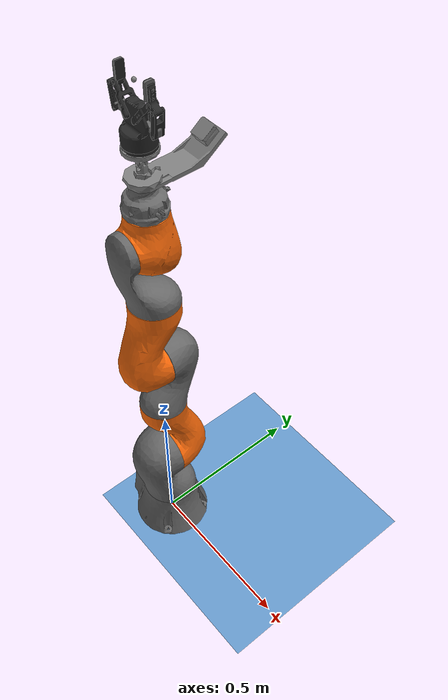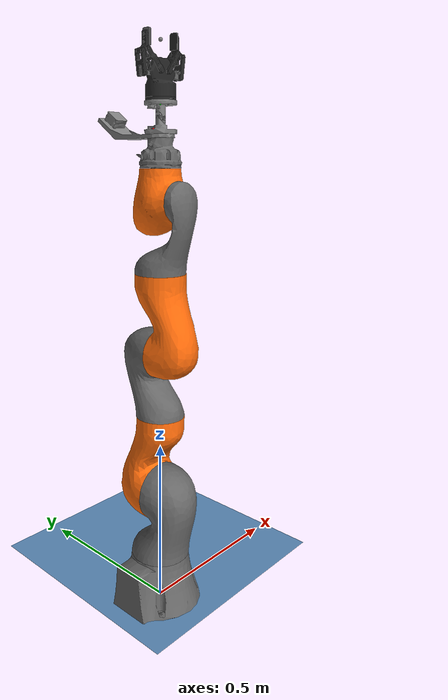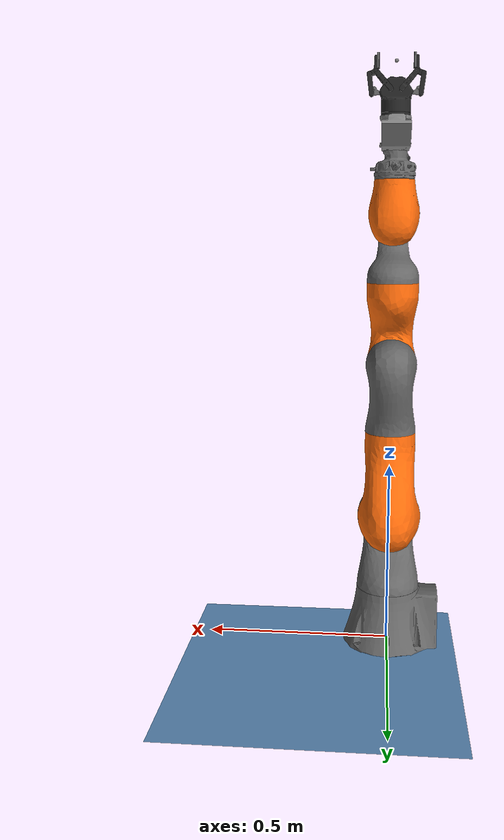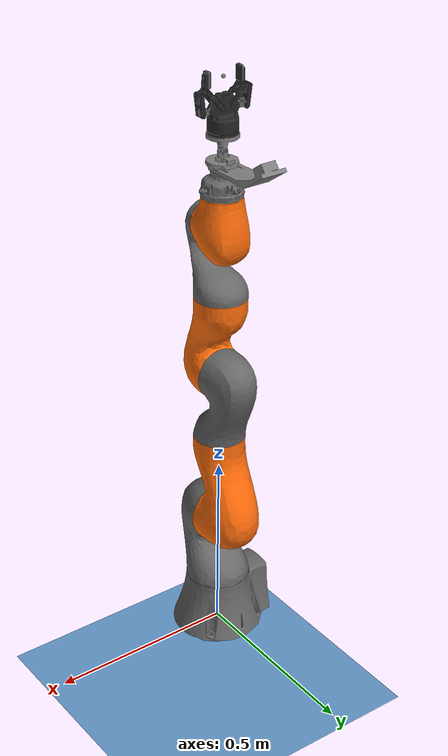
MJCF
<mujoco model="unnamed_model">
  <compiler autolimits="true" angle="radian"/>
  <option timestep="0.001" gravity="0 0 -9.8100000000000005" integrator="implicitfast"/>
  <statistic meansize="0.029999999999999999" extent="0.29999999999999999" center="0.29999999999999999 0 0"/>
  <default>
    <default class="/"/>
    <default class="lab/"/>
    <default class="lab/iiwa/"/>
    <default class="lab/iiwa/cardan_joint/">
      <default class="lab/iiwa/cardan_joint/visual">
        <geom type="mesh" contype="0" conaffinity="0" group="2"/>
      </default>
      <default class="lab/iiwa/cardan_joint/collision">
        <geom type="mesh" group="3"/>
      </default>
    </default>
    <default class="lab/iiwa/cardan_joint/ur_gripper/2f85">
      <mesh scale="0.001 0.001 0.001"/>
      <joint axis="1 0 0"/>
      <general biastype="affine"/>
      <default class="lab/iiwa/cardan_joint/ur_gripper/visual2">
        <geom type="mesh" contype="0" conaffinity="0" group="2" material="lab/iiwa/cardan_joint/ur_gripper/gray2"/>
      </default>
      <default class="lab/iiwa/cardan_joint/ur_gripper/driver">
        <joint solreflimit="0.0050000000000000001 1" solimplimit="0.94999999999999996 0.98999999999999999 0.001" range="0 0.80000000000000004" armature="0.0050000000000000001" damping="0.10000000000000001"/>
      </default>
      <default class="lab/iiwa/cardan_joint/ur_gripper/follower">
        <joint pos="0 -0.017999999999999999 0.0064999999999999997" solreflimit="0.0050000000000000001 1" solimplimit="0.94999999999999996 0.98999999999999999 0.001" range="-0.872664 0.872664"/>
      </default>
      <default class="lab/iiwa/cardan_joint/ur_gripper/spring_link">
        <joint stiffness="0.050000000000000003" range="-0.29670597283 0.80000000000000004" springref="2.6200000000000001" damping="0.00125"/>
      </default>
      <default class="lab/iiwa/cardan_joint/ur_gripper/coupler">
        <joint solreflimit="0.0050000000000000001 1" solimplimit="0.94999999999999996 0.98999999999999999 0.001" range="-1.5700000000000001 0"/>
      </default>
      <default class="lab/iiwa/cardan_joint/ur_gripper/collision2">
        <geom type="box" condim="3" group="3" rgba="1 0.42352899999999999 0.039215699999999999 1"/>
        <default class="lab/iiwa/cardan_joint/ur_gripper/pad_box1">
          <geom type="box" priority="1" size="0.010999999999999999 0.0040000000000000001 0.0093749999999999997" rgba="0.55000000000000004 0.55000000000000004 0.55000000000000004 1" friction="0.69999999999999996" mass="0" solref="0.0040000000000000001 1" solimp="0.94999999999999996 0.98999999999999999 0.001" pos="0 -0.0025999999999999999 0.028125000000000001"/>
        </default>
        <default class="lab/iiwa/cardan_joint/ur_gripper/pad_box2">
          <geom type="box" priority="1" size="0.010999999999999999 0.0040000000000000001 0.0093749999999999997" rgba="0.45000000000000001 0.45000000000000001 0.45000000000000001 1" friction="0.59999999999999998" mass="0" solref="0.0040000000000000001 1" solimp="0.94999999999999996 0.98999999999999999 0.001" pos="0 -0.0025999999999999999 0.0093749999999999997"/>
        </default>
      </default>
    </default>
    <default class="wall/"/>
    <default class="block_green/"/>
    <default class="block_orange/"/>
    <default class="block_blue/"/>
  </default>
  <asset>
    <texture name="lab//unnamed_texture_0" type="skybox" builtin="gradient" rgb1="0.59999999999999998 0.80000000000000004 1" rgb2="0.20000000000000001 0.20000000000000001 0.20000000000000001" width="512" height="3072"/>
    <texture name="lab/groundplane" type="2d" builtin="checker" rgb1="0.5 0.69999999999999996 0.90000000000000002" rgb2="0.29999999999999999 0.5 0.69999999999999996" mark="edge" markrgb="0.90000000000000002 0.90000000000000002 0.90000000000000002" width="300" height="300"/>
    <material name="lab/groundplane" class="lab/" texture="lab/groundplane" texrepeat="5 5" texuniform="true" reflectance="0.40000000000000002"/>
    <mesh name="lab/iiwa/link_0" class="lab/iiwa/" file="base_link-5923539fbd7857ea716ff1bc3ef3f05fb44fefdd.stl"/>
    <mesh name="lab/iiwa/link_1" class="lab/iiwa/" file="link_1-ac6245160be1a43d652c2a2c3b73a58d1dfa90e4.stl"/>
    <mesh name="lab/iiwa/link_2" class="lab/iiwa/" file="link_2-825b1e76e8e7c70ae4c8d112f62701a01555dcf5.stl"/>
    <mesh name="lab/iiwa/link_3" class="lab/iiwa/" file="link_3-b55302ba767376e20501905d1e5ea3ae6b70998d.stl"/>
    <mesh name="lab/iiwa/link_4" class="lab/iiwa/" file="link_4-05ccd5ecc00b0d36b59bc264f7cec382d4c4122b.stl"/>
    <mesh name="lab/iiwa/link_5" class="lab/iiwa/" file="link_5-fcf25b48909184c134560cfa93731b85bf4698c9.stl"/>
    <mesh name="lab/iiwa/link_6" class="lab/iiwa/" file="link_6-955785181a16fa937663f7db1c496e9605b820a9.stl"/>
    <mesh name="lab/iiwa/link_7" class="lab/iiwa/" file="link_7-85a5c154edcbf21b01a9031cc0a7c9861a4e0fed.stl"/>
    <mesh name="lab/iiwa/cardan_joint/cj_cam_mount" class="lab/iiwa/cardan_joint/" file="cj_top_V4_coll-6f3e36287b54bdd5ad2518d59e4cc865785780c3.obj"/>
    <mesh name="lab/iiwa/cardan_joint/cj_middle" class="lab/iiwa/cardan_joint/" file="cj_middle-1309231b4c0a493c2b65609bbb64275813619889.obj"/>
    <mesh name="lab/iiwa/cardan_joint/cj_bot" class="lab/iiwa/cardan_joint/" file="cj_asm_half-947726d4ba6162bd80d70f31db90d4ae33ecd56c.obj"/>
    <mesh name="lab/iiwa/cardan_joint/cj_cam_mount_vis" class="lab/iiwa/cardan_joint/" file="cj_top_V4-76978c996657efe89708b43b67fb00f5f31b4bc6.obj"/>
    <mesh name="lab/iiwa/cardan_joint/cj_middle_vis" class="lab/iiwa/cardan_joint/" file="cj_middle_vis-e08f93e997c48b5995634064a579731fca49cfe9.obj"/>
    <mesh name="lab/iiwa/cardan_joint/cj_bot_vis" class="lab/iiwa/cardan_joint/" file="cj_asm_half_vis-10e9d2e22a7610ed98d9ae3b58b68799d0da53a0.obj"/>
    <material name="lab/iiwa/cardan_joint/ur_gripper/black2" class="lab/iiwa/cardan_joint/ur_gripper/2f85" rgba="0.14899999999999999 0.14899999999999999 0.14899999999999999 1"/>
    <material name="lab/iiwa/cardan_joint/ur_gripper/wood2" class="lab/iiwa/cardan_joint/ur_gripper/2f85" rgba="0.56000000000000005 0.37 0.28999999999999998 1"/>
    <material name="lab/iiwa/cardan_joint/ur_gripper/gray2" class="lab/iiwa/cardan_joint/ur_gripper/2f85" rgba="0.40000000000000002 0.40000000000000002 0.40000000000000002 1"/>
    <mesh name="lab/iiwa/cardan_joint/ur_gripper/base_mount" class="lab/iiwa/cardan_joint/ur_gripper/2f85" file="base_mount-22e57178defe77afb6bdd333bfae16607f1eb3dd.stl"/>
    <mesh name="lab/iiwa/cardan_joint/ur_gripper/base" class="lab/iiwa/cardan_joint/ur_gripper/2f85" file="base-e5dacbcc3971bfdb549ff8c7d38ea873ca7f2933.stl"/>
    <mesh name="lab/iiwa/cardan_joint/ur_gripper/driver" class="lab/iiwa/cardan_joint/ur_gripper/2f85" file="driver-97efa43184c575b31ff1f3980641896f51492762.stl"/>
    <mesh name="lab/iiwa/cardan_joint/ur_gripper/coupler" class="lab/iiwa/cardan_joint/ur_gripper/2f85" file="coupler-0a4240dc94992944cca6ec9e270ff1658fa86c55.stl"/>
    <mesh name="lab/iiwa/cardan_joint/ur_gripper/follower" class="lab/iiwa/cardan_joint/ur_gripper/2f85" file="follower-39e4b8048f1395ee38cb45b37b5fec0e6f2aaec9.stl"/>
    <mesh name="lab/iiwa/cardan_joint/ur_gripper/pad" class="lab/iiwa/cardan_joint/ur_gripper/2f85" file="pad-e6a633b2c81740b1f783ec4c6e695c8cc570f09d.stl"/>
    <mesh name="lab/iiwa/cardan_joint/ur_gripper/silicone_pad" class="lab/iiwa/cardan_joint/ur_gripper/2f85" file="silicone_pad-c284384f3ca6dcdc24d6188a5d1a2d4c42c412ac.stl"/>
    <mesh name="lab/iiwa/cardan_joint/ur_gripper/spring_link" class="lab/iiwa/cardan_joint/ur_gripper/2f85" file="spring_link-8f50234325193b84e9f86b7a63a24560a389c9bf.stl"/>
    <material name="wall/wood" class="wall/" specular="0.10000000000000001" shininess="0.20000000000000001" reflectance="0.050000000000000003" rgba="0.55000000000000004 0.27000000000000002 0.070000000000000007 1"/>
    <material name="wall/aluminum" class="wall/" specular="0.80000000000000004" shininess="0.90000000000000002" reflectance="0.59999999999999998" rgba="0.80000000000000004 0.80000000000000004 0.80000000000000004 1"/>
  </asset>
  <worldbody>
    <body name="ground" mocap="false" pos="0 0 0">
      <site name="ground_site_attach" class="/"/>
      <body name="lab/">
        <light name="lab//unnamed_light_0" class="lab/" directional="true" pos="0 0 1.5" dir="0 0 -1"/>
        <geom name="lab/floor" class="lab/" type="plane" size="0 0 0.050000000000000003" material="lab/groundplane"/>
        <site name="lab/ground_attach" class="lab/" group="0" rgba="1 0 0 1" size="0.01" pos="0 0 0"/>
        <body pos="0 0 0" name="lab/iiwa/">
          <body name="lab/iiwa/base" pos="0 0 0">
            <camera name="lab/iiwa/robotview" class="lab/iiwa/" mode="fixed" pos="1 0 0.40000000000000002" quat="0.65300000000000002 0.27100000000000002 0.27100000000000002 0.65300000000000002"/>
            <inertial pos="0 0 0" mass="0" diaginertia="0 0 0"/>
            <geom name="lab/iiwa//unnamed_geom_0" class="lab/iiwa/" type="mesh" contype="0" conaffinity="0" group="1" rgba="0.40000000000000002 0.40000000000000002 0.40000000000000002 1" density="0" mesh="lab/iiwa/link_0"/>
            <geom name="lab/iiwa/col_sockel" class="lab/iiwa/" type="sphere" contype="0" conaffinity="0" group="3" size="0.12" rgba="1 0 0 1" density="0" pos="-0.01 0 0.10000000000000001"/>
            <body name="lab/iiwa/iiwa_link_1" pos="0 0 0.1575">
              <inertial pos="0 -0.01439 0.102503" quat="1 0 0 0" mass="6.4950000000000001" diaginertia="0.0690761441316632 0.071108558691451398 0.020062585440211899"/>
              <joint name="lab/iiwa/joint_1" class="lab/iiwa/" pos="0 0 0" axis="0 0 1" limited="true" range="-2.9670597283903604 2.9670597283903604"/>
              <geom name="lab/iiwa//unnamed_geom_2" class="lab/iiwa/" type="mesh" contype="0" conaffinity="0" group="1" rgba="0.40000000000000002 0.40000000000000002 0.40000000000000002 1" density="0" pos="0 0 -0.0050000000000000001" mesh="lab/iiwa/link_1"/>
              <geom name="lab/iiwa/col_joint1" class="lab/iiwa/" type="capsule" contype="1" conaffinity="1" group="3" size="0.074999999999999997" rgba="0.40000000000000002 0.40000000000000002 0.40000000000000002 1" density="0" fromto="0 0 0 0 -0.050000000000000003 0.20250000000000001" quat="0 0 0 1"/>
              <body name="lab/iiwa/iiwa_link_2" pos="0 0 0.20250000000000001" quat="0 0 0.70710700000000004 0.70710700000000004">
                <inertial pos="1.2e-05 0.06472 0.0048040000000000001" quat="1 0 0 0" mass="8.8070000000000004" diaginertia="0.082470168353469195 0.016411096805519099 0.087351089266136106"/>
                <joint name="lab/iiwa/joint_2" class="lab/iiwa/" pos="0 0 0" axis="0 0 1" limited="true" range="-2.0943951023931953 2.0943951023931953"/>
                <geom name="lab/iiwa//unnamed_geom_4" class="lab/iiwa/" type="mesh" contype="0" conaffinity="0" group="1" rgba="1 0.42352899999999999 0.039215699999999999 1" density="0" pos="0 0 -0.012999999999999999" quat="0 0 0 1" mesh="lab/iiwa/link_2"/>
                <geom name="lab/iiwa/col_joint2" class="lab/iiwa/" type="capsule" contype="1" conaffinity="1" group="3" size="0.074999999999999997" rgba="1 0.42352899999999999 0.039215699999999999 1" density="0" fromto="0 0 0.051299999999999998 0 0.23749999999999999 0" quat="0 0 0 1"/>
                <body name="lab/iiwa/iiwa_link_3" pos="0 0.23749999999999999 0" quat="0 0 0.70710700000000004 0.70710700000000004">
                  <inertial pos="-0.00020799999999999999 0.01601 0.087282999999999999" quat="1 0 0 0" mass="2.7999999999999998" diaginertia="0.023015294131881699 0.022866155414347399 0.0454482283748983"/>
                  <joint name="lab/iiwa/joint_3" class="lab/iiwa/" pos="0 0 0" axis="0 0 1" limited="true" range="-2.9670597283903604 2.9670597283903604"/>
                  <geom name="lab/iiwa//unnamed_geom_6" class="lab/iiwa/" type="mesh" contype="0" conaffinity="0" group="1" rgba="0.40000000000000002 0.40000000000000002 0.40000000000000002 1" density="0" pos="0 0 -0.0050000000000000001" mesh="lab/iiwa/link_3"/>
                  <geom name="lab/iiwa/col_joint3" class="lab/iiwa/" type="capsule" contype="1" conaffinity="1" group="3" size="0.070000000000000007" rgba="0.40000000000000002 0.40000000000000002 0.40000000000000002 1" density="0" fromto="0 0 0 0 0.050000000000000003 0.1825" quat="0 0 0 1"/>
                  <body name="lab/iiwa/iiwa_link_4" pos="0 0 0.1825" quat="0.70710700000000004 0.70710700000000004 0 0">
                    <inertial pos="-0.000203 0.098639000000000004 0.011478" quat="1 0 0 0" mass="5.2830000000000004" diaginertia="0.047278966834196801 0.0096472680414690908 0.046652900776167898"/>
                    <joint name="lab/iiwa/joint_4" class="lab/iiwa/" pos="0 0 0" axis="0 0 1" limited="true" range="-2.0943951023931953 2.0943951023931953"/>
                    <geom name="lab/iiwa//unnamed_geom_8" class="lab/iiwa/" type="mesh" contype="0" conaffinity="0" group="1" rgba="1 0.42352899999999999 0.039215699999999999 1" density="0" pos="0 0 -0.010999999999999999" mesh="lab/iiwa/link_4"/>
                    <geom name="lab/iiwa/col_joint4" class="lab/iiwa/" type="capsule" contype="1" conaffinity="1" group="3" size="0.070000000000000007" rgba="1 0.42352899999999999 0.039215699999999999 1" density="0" fromto="0 0 0.040000000000000001 0 0.2175 0" quat="0 0 0 1"/>
                    <body name="lab/iiwa/iiwa_link_5" pos="0 0.2175 0" quat="0 0 0.70710700000000004 0.70710700000000004">
                      <inertial pos="5.7000000000000003e-05 0.014468 0.062937999999999994" mass="1.889" diaginertia="0.0138359953358589 0.011685933775196901 0.00571863785412578"/>
                      <joint name="lab/iiwa/joint_5" class="lab/iiwa/" pos="0 0 0" axis="0 0 1" limited="true" range="-2.9670597283903604 2.9670597283903604"/>
                      <geom name="lab/iiwa//unnamed_geom_10" class="lab/iiwa/" type="mesh" contype="0" conaffinity="0" group="1" rgba="0.40000000000000002 0.40000000000000002 0.40000000000000002 1" density="0" pos="0 0 -0.0050000000000000001" quat="0 0 0 1" mesh="lab/iiwa/link_5"/>
                      <geom name="lab/iiwa/col_joint5" class="lab/iiwa/" type="capsule" contype="1" conaffinity="1" group="3" size="0.070000000000000007" rgba="0.40000000000000002 0.40000000000000002 0.40000000000000002 1" density="0" fromto="0 0 0 0 0.029999999999999999 0.1825" quat="0 0 0 1"/>
                      <body name="lab/iiwa/iiwa_link_6" pos="0 0 0.1825" quat="0.70710700000000004 0.70710700000000004 0 0">
                        <inertial pos="0.00036299999999999999 0.016982000000000001 -0.019730999999999999" quat="1 0 0 0" mass="2.3199999999999998" diaginertia="0.0073275878721676497 0.0047763375578371101 0.0060679763855029604"/>
                        <joint name="lab/iiwa/joint_6" class="lab/iiwa/" pos="0 0 0" axis="0 0 1" limited="true" range="-2.0943951023931953 2.0943951023931953"/>
                        <geom name="lab/iiwa//unnamed_geom_12" class="lab/iiwa/" type="mesh" contype="0" conaffinity="0" group="1" rgba="1 0.42352899999999999 0.039215699999999999 1" density="0" pos="0 0 -0.060999999999999999" quat="0 0 0 1" mesh="lab/iiwa/link_6"/>
                        <geom name="lab/iiwa/col_joint67" class="lab/iiwa/" type="capsule" contype="1" conaffinity="1" group="3" size="0.059999999999999998" rgba="1 0.42352899999999999 0.039215699999999999 1" density="0" fromto="0 0 0 0 0.081000000000000003 0" quat="0 0 0 1"/>
                        <body name="lab/iiwa/iiwa_link_7" pos="0 0.081000000000000003 0" quat="0 0 0.70710700000000004 0.70710700000000004">
                          <inertial pos="0.0019040000000000001 -9.2999999999999997e-05 0.018862" quat="1 0 0 0" mass="0.86299999999999999" diaginertia="0.00088400000000000002 0.00088800000000000001 0.0011050000000000001"/>
                          <joint name="lab/iiwa/joint_7" class="lab/iiwa/" pos="0 0 0" axis="0 0 1" limited="true" range="-3.0543261909900767 3.0543261909900767"/>
                          <geom name="lab/iiwa//unnamed_geom_14" class="lab/iiwa/" type="mesh" contype="0" conaffinity="0" group="1" rgba="0.40000000000000002 0.40000000000000002 0.40000000000000002 1" density="0" mesh="lab/iiwa/link_7"/>
                          <site name="lab/iiwa/gripper_attachment" class="lab/iiwa/" group="0" rgba="1 0 0 1" size="0.01" pos="0 0 0.070999999999999994"/>
                          <body pos="0 0 0.070999999999999994" name="lab/iiwa/cardan_joint/">
                            <body name="lab/iiwa/cardan_joint/cj_top" pos="0 0 0" quat="0.5 0.5 -0.5 -0.5">
                              <inertial pos="0.0135 -0 0.022380000000000001" quat="1 0 0 0" mass="0.5" diaginertia="0.00012400000000000001 0.00037800000000000003 0.00042499999999999998"/>
                              <geom name="lab/iiwa/cardan_joint//unnamed_geom_0" class="lab/iiwa/cardan_joint/visual" contype="0" conaffinity="0" group="2" quat="0.70709999999999995 0 0 0.70709999999999995" mesh="lab/iiwa/cardan_joint/cj_cam_mount_vis"/>
                              <geom name="lab/iiwa/cardan_joint//unnamed_geom_1" class="lab/iiwa/cardan_joint/collision" contype="0" quat="0.70709999999999995 0 0 0.70709999999999995" mesh="lab/iiwa/cardan_joint/cj_cam_mount"/>
                              <site name="lab/iiwa/cardan_joint/imu1_site" class="lab/iiwa/cardan_joint/" type="sphere" rgba="1 0 0 1" size="0.0040000000000000001" pos="-0.0138 0.02 0.01" quat="0.5 0.5 -0.5 0.5"/>
                              <camera name="lab/iiwa/cardan_joint/eye_in_hand" class="lab/iiwa/cardan_joint/" mode="fixed" fovy="75" pos="-0.17000000000000001 0.040000000000000001 0" quat="0.62721139999999997 0.62721139999999997 0.32650560000000001 0.32650560000000001"/>
                              <site name="lab/iiwa/cardan_joint/camera_site" class="lab/iiwa/cardan_joint/" type="sphere" rgba="1 0 0 1" size="0.0040000000000000001" pos="-0.17000000000000001 0.040000000000000001 0" quat="0.62721139999999997 0.62721139999999997 0.32650560000000001 0.32650560000000001"/>
                              <body name="lab/iiwa/cardan_joint/cj_middle" pos="0 0.048000000000000001 0" quat="0.70709999999999995 -0.70709999999999995 0 0">
                                <inertial pos="0 0 0" quat="1 0 0 0" mass="0.016" diaginertia="9.9999999999999995e-07 9.9999999999999995e-07 9.9999999999999995e-07"/>
                                <joint name="lab/iiwa/cardan_joint/joint_cj1" class="lab/iiwa/cardan_joint/" pos="0 0 0" axis="-1 0 0" limited="true" range="-1.0 1.0" damping="0.0050000000000000003"/>
                                <geom name="lab/iiwa/cardan_joint//unnamed_geom_2" class="lab/iiwa/cardan_joint/visual" contype="0" conaffinity="0" group="2" quat="0.70709999999999995 0.70709999999999995 0 0" mesh="lab/iiwa/cardan_joint/cj_middle_vis"/>
                                <geom name="lab/iiwa/cardan_joint//unnamed_geom_3" class="lab/iiwa/cardan_joint/collision" contype="0" conaffinity="0" quat="0.70709999999999995 0.70709999999999995 0 0" mesh="lab/iiwa/cardan_joint/cj_middle"/>
                                <body name="lab/iiwa/cardan_joint/cj_bot" pos="0 0 0.028000000000000001" quat="0.70709999999999995 0 0 -0.70709999999999995">
                                  <inertial pos="0 0 0.050000000000000003" quat="1 0 0 0" mass="1" diaginertia="0.00080000000000000004 0.00080000000000000004 0.001"/>
                                  <joint name="lab/iiwa/cardan_joint/joint_cj2" class="lab/iiwa/cardan_joint/" pos="0 0 -0.028000000000000001" axis="-1 0 0" limited="true" range="-1.0 1.0" damping="0.0050000000000000003"/>
                                  <geom name="lab/iiwa/cardan_joint//unnamed_geom_4" class="lab/iiwa/cardan_joint/visual" contype="0" conaffinity="0" group="2" quat="0 1 0 0" mesh="lab/iiwa/cardan_joint/cj_bot_vis"/>
                                  <geom name="lab/iiwa/cardan_joint//unnamed_geom_5" class="lab/iiwa/cardan_joint/collision" contype="0" conaffinity="0" quat="0 1 0 0" mesh="lab/iiwa/cardan_joint/cj_bot"/>
                                  <site name="lab/iiwa/cardan_joint/imu2_site" class="lab/iiwa/cardan_joint/" type="sphere" rgba="0 1 0 1" size="0.002" pos="0.0138 0.0124 0" quat="0.70709999999999995 0 0 -0.70709999999999995"/>
                                  <site name="lab/iiwa/cardan_joint/tool_attach" class="lab/iiwa/cardan_joint/" type="sphere" rgba="0 0 1 1" size="0.0040000000000000001" pos="0 0 0.01" quat="0.70699999999999996 0 0 0.70699999999999996"/>
                                  <body pos="0 0 0.01" quat="0.70699999999999996 0 0 0.70699999999999996" name="lab/iiwa/cardan_joint/ur_gripper/">
                                    <body name="lab/iiwa/cardan_joint/ur_gripper/base_mount" childclass="lab/iiwa/cardan_joint/ur_gripper/2f85" pos="0 0 0">
                                      <inertial pos="0 0 0" quat="1 0 0 0" mass="0.0001" diaginertia="9.9999999999999995e-07 9.9999999999999995e-07 9.9999999999999995e-07"/>
                                      <geom name="lab/iiwa/cardan_joint/ur_gripper//unnamed_geom_0" class="lab/iiwa/cardan_joint/ur_gripper/visual2" material="lab/iiwa/cardan_joint/ur_gripper/black2" mesh="lab/iiwa/cardan_joint/ur_gripper/base_mount"/>
                                      <geom name="lab/iiwa/cardan_joint/ur_gripper/col_mount" type="cylinder" contype="1" conaffinity="1" group="3" size="0.040000000000000001 0.022499999999999999" rgba="1 0.42352899999999999 0.039215699999999999 1" pos="0 0 0.016"/>
                                      <body name="lab/iiwa/cardan_joint/ur_gripper/base" pos="0 0 0.0038">
                                        <body name="lab/iiwa/cardan_joint/ur_gripper/gripping_point" pos="0 0 0.13">
                                          <site name="lab/iiwa/cardan_joint/ur_gripper/gripping_point" pos="0 0 0"/>
                                        </body>
                                        <inertial pos="0 -2.7039400000000001e-05 0.035467499999999999" quat="1 -0.00152849 0 0" mass="0.77744100000000005" diaginertia="0.00026028500000000002 0.000225381 0.00015270799999999999"/>
                                        <geom name="lab/iiwa/cardan_joint/ur_gripper//unnamed_geom_2" class="lab/iiwa/cardan_joint/ur_gripper/visual2" material="lab/iiwa/cardan_joint/ur_gripper/black2" mesh="lab/iiwa/cardan_joint/ur_gripper/base"/>
                                        <geom name="lab/iiwa/cardan_joint/ur_gripper/col_base" type="box" contype="1" conaffinity="1" group="3" size="0.012500000000000001 0.029999999999999999 0.050000000000000003" rgba="1 0.42352899999999999 0.039215699999999999 1" pos="0 0 0.037999999999999999"/>
                                        <site name="lab/iiwa/cardan_joint/ur_gripper/pinch" type="sphere" group="8" material="lab/iiwa/cardan_joint/ur_gripper/wood2" size="0.0050000000000000001" pos="0 0 0.14499999999999999"/>
                                        <body name="lab/iiwa/cardan_joint/ur_gripper/right_driver" pos="0 0.030601099999999999 0.054904000000000001">
                                          <inertial pos="2.96931e-12 0.017754700000000002 0.00107314" quat="0.68130100000000005 0.73200299999999996 0 0" mass="0.0089956299999999993" diaginertia="1.72352e-06 1.6090599999999999e-06 3.22006e-07"/>
                                          <joint name="lab/iiwa/cardan_joint/ur_gripper/right_driver_joint" class="lab/iiwa/cardan_joint/ur_gripper/driver"/>
                                          <geom name="lab/iiwa/cardan_joint/ur_gripper//unnamed_geom_4" class="lab/iiwa/cardan_joint/ur_gripper/visual2" material="lab/iiwa/cardan_joint/ur_gripper/gray2" mesh="lab/iiwa/cardan_joint/ur_gripper/driver"/>
                                          <body name="lab/iiwa/cardan_joint/ur_gripper/right_coupler" pos="0 0.0315 -0.0041000000000000003">
                                            <inertial pos="0 0.0030120899999999998 0.023217499999999999" quat="0.70563600000000004 -0.045590400000000003 0.045590400000000003 0.70563600000000004" mass="0.0140974" diaginertia="4.1620600000000001e-06 3.5221600000000001e-06 8.8813100000000003e-07"/>
                                            <joint name="lab/iiwa/cardan_joint/ur_gripper/right_coupler_joint" class="lab/iiwa/cardan_joint/ur_gripper/coupler"/>
                                            <geom name="lab/iiwa/cardan_joint/ur_gripper//unnamed_geom_5" class="lab/iiwa/cardan_joint/ur_gripper/visual2" material="lab/iiwa/cardan_joint/ur_gripper/black2" mesh="lab/iiwa/cardan_joint/ur_gripper/coupler"/>
                                            <geom name="lab/iiwa/cardan_joint/ur_gripper/col_right_coupler" type="box" contype="1" conaffinity="1" group="3" size="0.0051392800000000004 0.012750900000000001 0.026890899999999999" rgba="1 0 0 1" pos="0 0.0030120899999999998 0.023217499999999999" quat="0.70563600000000004 -0.045590400000000003 0.045590400000000003 0.70563600000000004"/>
                                          </body>
                                        </body>
                                        <body name="lab/iiwa/cardan_joint/ur_gripper/right_spring_link" pos="0 0.0132 0.060900000000000003">
                                          <inertial pos="-8.6500500000000008e-09 0.018162399999999999 0.021265800000000001" quat="0.66340299999999996 -0.24473700000000001 0.24473700000000001 0.66340299999999996" mass="0.022164199999999998" diaginertia="8.9685299999999993e-06 6.7173299999999996e-06 2.6393100000000001e-06"/>
                                          <joint name="lab/iiwa/cardan_joint/ur_gripper/right_spring_link_joint" class="lab/iiwa/cardan_joint/ur_gripper/spring_link"/>
                                          <geom name="lab/iiwa/cardan_joint/ur_gripper//unnamed_geom_7" class="lab/iiwa/cardan_joint/ur_gripper/visual2" material="lab/iiwa/cardan_joint/ur_gripper/black2" mesh="lab/iiwa/cardan_joint/ur_gripper/spring_link"/>
                                          <body name="lab/iiwa/cardan_joint/ur_gripper/right_follower" pos="0 0.055 0.037499999999999999">
                                            <inertial pos="0 -0.011046 0.012478599999999999" quat="1 0.16639999999999999 0 0" mass="0.012522200000000001" diaginertia="2.6741500000000001e-06 2.4559000000000001e-06 6.0203100000000003e-07"/>
                                            <joint name="lab/iiwa/cardan_joint/ur_gripper/right_follower_joint" class="lab/iiwa/cardan_joint/ur_gripper/follower"/>
                                            <geom name="lab/iiwa/cardan_joint/ur_gripper//unnamed_geom_8" class="lab/iiwa/cardan_joint/ur_gripper/visual2" material="lab/iiwa/cardan_joint/ur_gripper/black2" mesh="lab/iiwa/cardan_joint/ur_gripper/follower"/>
                                            <body name="lab/iiwa/cardan_joint/ur_gripper/right_pad" pos="0 -0.0189 0.013520000000000001">
                                              <geom name="lab/iiwa/cardan_joint/ur_gripper/right_pad1" class="lab/iiwa/cardan_joint/ur_gripper/pad_box1" contype="1" conaffinity="1"/>
                                              <geom name="lab/iiwa/cardan_joint/ur_gripper/right_pad2" class="lab/iiwa/cardan_joint/ur_gripper/pad_box2"/>
                                              <inertial pos="0 -0.0025000000000000001 0.018499999999999999" quat="0.70710700000000004 0 0 0.70710700000000004" mass="0.0035000000000000001" diaginertia="4.7395799999999999e-07 3.6458299999999998e-07 1.23958e-07"/>
                                              <geom name="lab/iiwa/cardan_joint/ur_gripper//unnamed_geom_11" class="lab/iiwa/cardan_joint/ur_gripper/visual2" mesh="lab/iiwa/cardan_joint/ur_gripper/pad"/>
                                              <body name="lab/iiwa/cardan_joint/ur_gripper/right_silicone_pad">
                                                <geom name="lab/iiwa/cardan_joint/ur_gripper//unnamed_geom_12" class="lab/iiwa/cardan_joint/ur_gripper/visual2" material="lab/iiwa/cardan_joint/ur_gripper/black2" mesh="lab/iiwa/cardan_joint/ur_gripper/silicone_pad"/>
                                              </body>
                                            </body>
                                          </body>
                                        </body>
                                        <body name="lab/iiwa/cardan_joint/ur_gripper/left_driver" pos="0 -0.030601099999999999 0.054904000000000001" quat="0 0 0 1">
                                          <inertial pos="0 0.017754700000000002 0.00107314" quat="0.68130100000000005 0.73200299999999996 0 0" mass="0.0089956299999999993" diaginertia="1.72352e-06 1.6090599999999999e-06 3.22006e-07"/>
                                          <joint name="lab/iiwa/cardan_joint/ur_gripper/left_driver_joint" class="lab/iiwa/cardan_joint/ur_gripper/driver"/>
                                          <geom name="lab/iiwa/cardan_joint/ur_gripper//unnamed_geom_13" class="lab/iiwa/cardan_joint/ur_gripper/visual2" material="lab/iiwa/cardan_joint/ur_gripper/gray2" mesh="lab/iiwa/cardan_joint/ur_gripper/driver"/>
                                          <body name="lab/iiwa/cardan_joint/ur_gripper/left_coupler" pos="0 0.0315 -0.0041000000000000003">
                                            <inertial pos="0 0.0030120899999999998 0.023217499999999999" quat="0.70563600000000004 -0.045590400000000003 0.045590400000000003 0.70563600000000004" mass="0.0140974" diaginertia="4.1620600000000001e-06 3.5221600000000001e-06 8.8813100000000003e-07"/>
                                            <joint name="lab/iiwa/cardan_joint/ur_gripper/left_coupler_joint" class="lab/iiwa/cardan_joint/ur_gripper/coupler"/>
                                            <geom name="lab/iiwa/cardan_joint/ur_gripper//unnamed_geom_14" class="lab/iiwa/cardan_joint/ur_gripper/visual2" material="lab/iiwa/cardan_joint/ur_gripper/black2" mesh="lab/iiwa/cardan_joint/ur_gripper/coupler"/>
                                            <geom name="lab/iiwa/cardan_joint/ur_gripper/col_left_coupler" type="box" contype="1" conaffinity="1" group="3" size="0.0051392800000000004 0.012750900000000001 0.026890899999999999" rgba="1 0 0 1" pos="0 0.0030120899999999998 0.023217499999999999" quat="0.70563600000000004 -0.045590400000000003 0.045590400000000003 0.70563600000000004"/>
                                          </body>
                                        </body>
                                        <body name="lab/iiwa/cardan_joint/ur_gripper/left_spring_link" pos="0 -0.0132 0.060900000000000003" quat="0 0 0 1">
                                          <inertial pos="-8.6500500000000008e-09 0.018162399999999999 0.021265800000000001" quat="0.66340299999999996 -0.24473700000000001 0.24473700000000001 0.66340299999999996" mass="0.022164199999999998" diaginertia="8.9685299999999993e-06 6.7173299999999996e-06 2.6393100000000001e-06"/>
                                          <joint name="lab/iiwa/cardan_joint/ur_gripper/left_spring_link_joint" class="lab/iiwa/cardan_joint/ur_gripper/spring_link"/>
                                          <geom name="lab/iiwa/cardan_joint/ur_gripper//unnamed_geom_16" class="lab/iiwa/cardan_joint/ur_gripper/visual2" material="lab/iiwa/cardan_joint/ur_gripper/black2" mesh="lab/iiwa/cardan_joint/ur_gripper/spring_link"/>
                                          <body name="lab/iiwa/cardan_joint/ur_gripper/left_follower" pos="0 0.055 0.037499999999999999">
                                            <inertial pos="0 -0.011046 0.012478599999999999" quat="1 0.16639999999999999 0 0" mass="0.012522200000000001" diaginertia="2.6741500000000001e-06 2.4559000000000001e-06 6.0203100000000003e-07"/>
                                            <joint name="lab/iiwa/cardan_joint/ur_gripper/left_follower_joint" class="lab/iiwa/cardan_joint/ur_gripper/follower"/>
                                            <geom name="lab/iiwa/cardan_joint/ur_gripper//unnamed_geom_17" class="lab/iiwa/cardan_joint/ur_gripper/visual2" material="lab/iiwa/cardan_joint/ur_gripper/black2" mesh="lab/iiwa/cardan_joint/ur_gripper/follower"/>
                                            <body name="lab/iiwa/cardan_joint/ur_gripper/left_pad" pos="0 -0.0189 0.013520000000000001">
                                              <geom name="lab/iiwa/cardan_joint/ur_gripper/left_pad1" class="lab/iiwa/cardan_joint/ur_gripper/pad_box1" contype="1" conaffinity="1"/>
                                              <geom name="lab/iiwa/cardan_joint/ur_gripper/left_pad2" class="lab/iiwa/cardan_joint/ur_gripper/pad_box2"/>
                                              <inertial pos="0 -0.0025000000000000001 0.018499999999999999" quat="1 0 0 1" mass="0.0035000000000000001" diaginertia="4.7395799999999999e-07 3.6458299999999998e-07 1.23958e-07"/>
                                              <geom name="lab/iiwa/cardan_joint/ur_gripper//unnamed_geom_20" class="lab/iiwa/cardan_joint/ur_gripper/visual2" mesh="lab/iiwa/cardan_joint/ur_gripper/pad"/>
                                              <body name="lab/iiwa/cardan_joint/ur_gripper/left_silicone_pad">
                                                <geom name="lab/iiwa/cardan_joint/ur_gripper//unnamed_geom_21" class="lab/iiwa/cardan_joint/ur_gripper/visual2" material="lab/iiwa/cardan_joint/ur_gripper/black2" mesh="lab/iiwa/cardan_joint/ur_gripper/silicone_pad"/>
                                              </body>
                                            </body>
                                          </body>
                                        </body>
                                      </body>
                                    </body>
                                  </body>
                                </body>
                              </body>
                            </body>
                          </body>
                        </body>
                      </body>
                    </body>
                  </body>
                </body>
              </body>
            </body>
          </body>
        </body>
      </body>
    </body>

  </worldbody>
  <contact>
    <exclude name="lab/iiwa/cardan_joint/ur_gripper//unnamed_contact_0" body1="lab/iiwa/cardan_joint/ur_gripper/base" body2="lab/iiwa/cardan_joint/ur_gripper/left_driver"/>
    <exclude name="lab/iiwa/cardan_joint/ur_gripper//unnamed_contact_1" body1="lab/iiwa/cardan_joint/ur_gripper/base" body2="lab/iiwa/cardan_joint/ur_gripper/right_driver"/>
    <exclude name="lab/iiwa/cardan_joint/ur_gripper//unnamed_contact_2" body1="lab/iiwa/cardan_joint/ur_gripper/base" body2="lab/iiwa/cardan_joint/ur_gripper/left_spring_link"/>
    <exclude name="lab/iiwa/cardan_joint/ur_gripper//unnamed_contact_3" body1="lab/iiwa/cardan_joint/ur_gripper/base" body2="lab/iiwa/cardan_joint/ur_gripper/right_spring_link"/>
    <exclude name="lab/iiwa/cardan_joint/ur_gripper//unnamed_contact_4" body1="lab/iiwa/cardan_joint/ur_gripper/right_coupler" body2="lab/iiwa/cardan_joint/ur_gripper/right_follower"/>
    <exclude name="lab/iiwa/cardan_joint/ur_gripper//unnamed_contact_5" body1="lab/iiwa/cardan_joint/ur_gripper/left_coupler" body2="lab/iiwa/cardan_joint/ur_gripper/left_follower"/>
  </contact>
  <equality>
    <connect name="lab/iiwa/cardan_joint/ur_gripper//unnamed_equality_0" class="lab/iiwa/cardan_joint/ur_gripper/2f85" solref="0.0050000000000000001 1" solimp="0.94999999999999996 0.98999999999999999 0.001" body1="lab/iiwa/cardan_joint/ur_gripper/right_follower" body2="lab/iiwa/cardan_joint/ur_gripper/right_coupler" anchor="0 0 0"/>
    <connect name="lab/iiwa/cardan_joint/ur_gripper//unnamed_equality_1" class="lab/iiwa/cardan_joint/ur_gripper/2f85" solref="0.0050000000000000001 1" solimp="0.94999999999999996 0.98999999999999999 0.001" body1="lab/iiwa/cardan_joint/ur_gripper/left_follower" body2="lab/iiwa/cardan_joint/ur_gripper/left_coupler" anchor="0 0 0"/>
    <joint name="lab/iiwa/cardan_joint/ur_gripper//unnamed_equality_2" class="lab/iiwa/cardan_joint/ur_gripper/2f85" solref="0.0050000000000000001 1" solimp="0.94999999999999996 0.98999999999999999 0.001" joint1="lab/iiwa/cardan_joint/ur_gripper/right_driver_joint" joint2="lab/iiwa/cardan_joint/ur_gripper/left_driver_joint" polycoef="0 1 0 0 0"/>
  </equality>
  <tendon>
    <fixed name="lab/iiwa/cardan_joint/ur_gripper/split" class="lab/iiwa/cardan_joint/ur_gripper/2f85">
      <joint joint="lab/iiwa/cardan_joint/ur_gripper/right_driver_joint" coef="0.5"/>
      <joint joint="lab/iiwa/cardan_joint/ur_gripper/left_driver_joint" coef="0.5"/>
    </fixed>
  </tendon>
  <actuator>
    <motor name="lab/iiwa/torq_j1" class="lab/iiwa/" ctrllimited="true" ctrlrange="-176 176" joint="lab/iiwa/joint_1"/>
    <motor name="lab/iiwa/torq_j2" class="lab/iiwa/" ctrllimited="true" ctrlrange="-176 176" joint="lab/iiwa/joint_2"/>
    <motor name="lab/iiwa/torq_j3" class="lab/iiwa/" ctrllimited="true" ctrlrange="-110 110" joint="lab/iiwa/joint_3"/>
    <motor name="lab/iiwa/torq_j4" class="lab/iiwa/" ctrllimited="true" ctrlrange="-110 110" joint="lab/iiwa/joint_4"/>
    <motor name="lab/iiwa/torq_j5" class="lab/iiwa/" ctrllimited="true" ctrlrange="-110 110" joint="lab/iiwa/joint_5"/>
    <motor name="lab/iiwa/torq_j6" class="lab/iiwa/" ctrllimited="true" ctrlrange="-40 40" joint="lab/iiwa/joint_6"/>
    <motor name="lab/iiwa/torq_j7" class="lab/iiwa/" ctrllimited="true" ctrlrange="-40 40" joint="lab/iiwa/joint_7"/>
    <general name="lab/iiwa/cardan_joint/ur_gripper/fingers_actuator" class="lab/iiwa/cardan_joint/ur_gripper/2f85" ctrlrange="0 255" forcerange="-5 5" tendon="lab/iiwa/cardan_joint/ur_gripper/split" gainprm="0.31372549999999999 0 0" biasprm="0 -100 -10"/>
  </actuator>
  <sensor>
    <accelerometer name="lab/iiwa/cardan_joint/acc1" site="lab/iiwa/cardan_joint/imu1_site"/>
    <gyro name="lab/iiwa/cardan_joint/gyro1" site="lab/iiwa/cardan_joint/imu1_site"/>
    <accelerometer name="lab/iiwa/cardan_joint/acc2" site="lab/iiwa/cardan_joint/imu2_site"/>
    <gyro name="lab/iiwa/cardan_joint/gyro2" site="lab/iiwa/cardan_joint/imu2_site"/>
  </sensor>
</mujoco>
